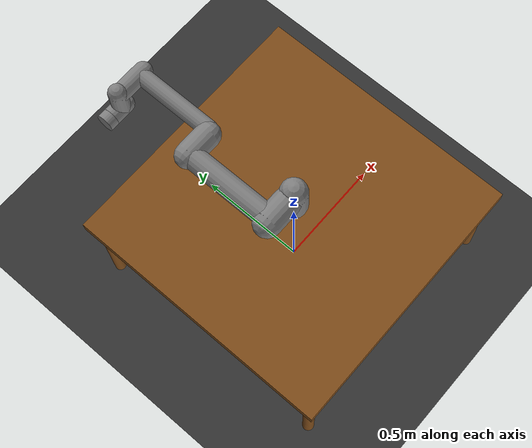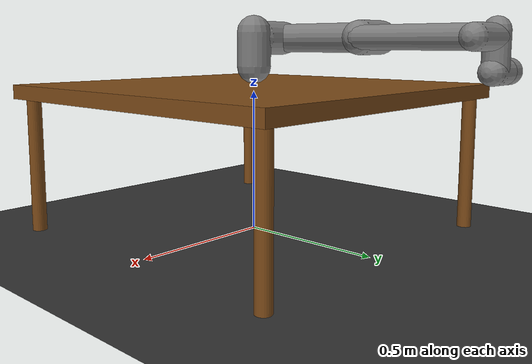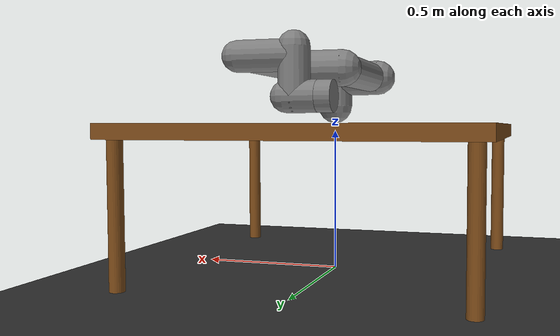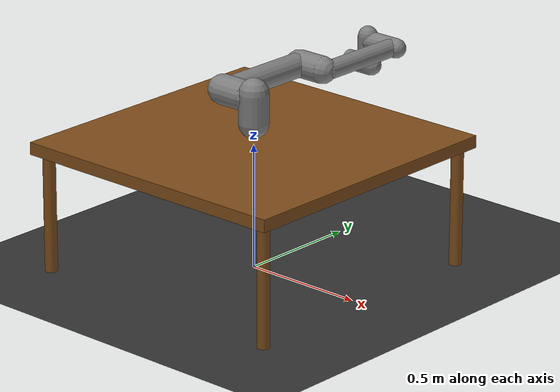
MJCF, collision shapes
<?xml version="1.0" ?>
<mujoco model="ur5e">
    <compiler angle="radian" meshdir="assets" autolimits="true"/>

    <option integrator="implicitfast"/>

    <visual>
        <global offwidth="1920" offheight="1080"/>
        <quality shadowsize="4096"/>
        <map force="0.1" zfar="30"/>
        <scale forcewidth="0.01" contactwidth="0.1" contactheight="0.03" connect="0.5"/>
    </visual>

    <default>
        <default class="ur5e">
            <material specular="0.5" shininess="0.25"/>
            <joint axis="0 1 0" range="-6.28319 6.28319" armature="0.1"/>
            <general gaintype="fixed" biastype="affine" ctrlrange="-6.2831 6.2831" gainprm="2000" biasprm="0 -2000 -400"
                forcerange="-150 150"/>
            <default class="size3">
                <default class="size3_limited">
                    <joint range="-3.1415 3.1415"/>
                    <general ctrlrange="-3.1415 3.1415"/>
                </default>
            </default>
            <default class="size1">
                <general gainprm="500" biasprm="0 -500 -100" forcerange="-28 28"/>
            </default>
            <default class="visual">
                <geom type="mesh" contype="0" conaffinity="0" group="2"/>
            </default>
            <default class="collision">
                <geom type="capsule" group="3"/>
                <default class="eef_collision">
                    <geom type="cylinder"/>
                </default>
            </default>
            <site size="0.001" rgba="0.5 0.5 0.5 0.3" group="4"/>
        </default>
    </default>

    <asset>
        <material class="ur5e" name="black" rgba="0.033 0.033 0.033 1"/>
        <material class="ur5e" name="jointgray" rgba="0.278 0.278 0.278 1"/>
        <material class="ur5e" name="linkgray" rgba="0.82 0.82 0.82 1"/>
        <material class="ur5e" name="urblue" rgba="0.49 0.678 0.8 1"/>
        <material name="table" rgba="0.5 0.3 0.1 1" specular="0.3" shininess="0.3"/>
        <material name="floor" rgba="0.2 0.2 0.2 1" specular="0.1" shininess="0.1"/>

        <!-- Original UR5e meshes -->
        <mesh file="base_0.obj"/>
        <mesh file="base_1.obj"/>
        <mesh file="shoulder_0.obj"/>
        <mesh file="shoulder_1.obj"/>
        <mesh file="shoulder_2.obj"/>
        <mesh file="upperarm_0.obj"/>
        <mesh file="upperarm_1.obj"/>
        <mesh file="upperarm_2.obj"/>
        <mesh file="upperarm_3.obj"/>
        <mesh file="forearm_0.obj"/>
        <mesh file="forearm_1.obj"/>
        <mesh file="forearm_2.obj"/>
        <mesh file="forearm_3.obj"/>
        <mesh file="wrist1_0.obj"/>
        <mesh file="wrist1_1.obj"/>
        <mesh file="wrist1_2.obj"/>
        <mesh file="wrist2_0.obj"/>
        <mesh file="wrist2_1.obj"/>
        <mesh file="wrist2_2.obj"/>
        <mesh file="wrist3.obj"/>
    </asset>

    <worldbody>
        <light name="spotlight" mode="targetbodycom" target="wrist_2_link" pos="0 -1 2"/>
        <light name="top" pos="0 0 3" dir="0 0 -1" directional="true"/>

        <!-- Floor -->
        <geom name="floor" type="plane" size="5 5 0.1" pos="0 0 0" material="floor"/>

        <!-- Multiple camera views -->
        <camera name="wide_fixed" pos="4.0 -3.0 3.0" target="base"/>  <!-- Target base body -->
        <camera name="side" pos="3.0 0.0 1.5" target="base"/>
        <camera name="top" pos="0.0 0.0 4.0" target="base"/>

        <!-- Table -->
        <body name="table" pos="0 0 0.5">
            <geom name="table_top" type="box" size="0.6 0.6 0.025" material="table"/>
            <geom name="leg1" type="cylinder" pos="0.55 0.55 -0.25" size="0.025 0.25" material="table"/>
            <geom name="leg2" type="cylinder" pos="-0.55 0.55 -0.25" size="0.025 0.25" material="table"/>
            <geom name="leg3" type="cylinder" pos="0.55 -0.55 -0.25" size="0.025 0.25" material="table"/>
            <geom name="leg4" type="cylinder" pos="-0.55 -0.55 -0.25" size="0.025 0.25" material="table"/>

            <!-- UR5e Base -->
            <body name="base" pos="0 0 0.025" quat="1 0 0 1" childclass="ur5e">
                <inertial mass="4.0" pos="0 0 0" diaginertia="0.00443333156 0.00443333156 0.0072"/>
                <geom mesh="base_0" material="black" class="visual"/>
                <geom mesh="base_1" material="jointgray" class="visual"/>

                <body name="shoulder_link" pos="0 0 0.163">
                    <inertial mass="3.7" pos="0 0 0" diaginertia="0.0102675 0.0102675 0.00666"/>
                    <joint name="shoulder_pan_joint" class="size3" axis="0 0 1"/>
                    <geom mesh="shoulder_0" material="urblue" class="visual"/>
                    <geom mesh="shoulder_1" material="black" class="visual"/>
                    <geom mesh="shoulder_2" material="jointgray" class="visual"/>
                    <geom class="collision" size="0.06 0.06" pos="0 0 -0.04"/>

                    <body name="upper_arm_link" pos="0 0.138 0" quat="1 0 1 0">
                        <inertial mass="8.393" pos="0 0 0.2125" diaginertia="0.133886 0.133886 0.0151074"/>
                        <joint name="shoulder_lift_joint" class="size3"/>
                        <geom mesh="upperarm_0" material="linkgray" class="visual"/>
                        <geom mesh="upperarm_1" material="black" class="visual"/>
                        <geom mesh="upperarm_2" material="jointgray" class="visual"/>
                        <geom mesh="upperarm_3" material="urblue" class="visual"/>
                        <geom class="collision" pos="0 -0.04 0" quat="1 1 0 0" size="0.06 0.06"/>
                        <geom class="collision" size="0.05 0.2" pos="0 0 0.2"/>

                        <body name="forearm_link" pos="0 -0.131 0.425">
                            <inertial mass="2.275" pos="0 0 0.196" diaginertia="0.0311796 0.0311796 0.004095"/>
                            <joint name="elbow_joint" class="size3_limited"/>
                            <geom mesh="forearm_0" material="urblue" class="visual"/>
                            <geom mesh="forearm_1" material="linkgray" class="visual"/>
                            <geom mesh="forearm_2" material="black" class="visual"/>
                            <geom mesh="forearm_3" material="jointgray" class="visual"/>
                            <geom class="collision" pos="0 0.08 0" quat="1 1 0 0" size="0.055 0.06"/>
                            <geom class="collision" size="0.038 0.19" pos="0 0 0.2"/>

                            <body name="wrist_1_link" pos="0 0 0.392" quat="1 0 1 0">
                                <inertial mass="1.219" pos="0 0.127 0" diaginertia="0.0025599 0.0025599 0.0021942"/>
                                <joint name="wrist_1_joint" class="size1"/>
                                <geom mesh="wrist1_0" material="black" class="visual"/>
                                <geom mesh="wrist1_1" material="urblue" class="visual"/>
                                <geom mesh="wrist1_2" material="jointgray" class="visual"/>
                                <geom class="collision" pos="0 0.05 0" quat="1 1 0 0" size="0.04 0.07"/>

                                <body name="wrist_2_link" pos="0 0.127 0">
                                    <inertial mass="1.219" pos="0 0 0.1" diaginertia="0.0025599 0.0025599 0.0021942"/>
                                    <joint name="wrist_2_joint" axis="0 0 1" class="size1"/>
                                    <geom mesh="wrist2_0" material="black" class="visual"/>
                                    <geom mesh="wrist2_1" material="urblue" class="visual"/>
                                    <geom mesh="wrist2_2" material="jointgray" class="visual"/>
                                    <geom class="collision" size="0.04 0.06" pos="0 0 0.04"/>
                                    <geom class="collision" pos="0 0.02 0.1" quat="1 1 0 0" size="0.04 0.04"/>

                                    <body name="wrist_3_link" pos="0 0 0.1">
                                        <inertial mass="0.1889" pos="0 0.0771683 0" quat="1 0 0 1"
                                            diaginertia="0.000132134 9.90863e-05 9.90863e-05"/>
                                        <joint name="wrist_3_joint" class="size1"/>
                                        <geom material="linkgray" mesh="wrist3" class="visual"/>
                                        <geom class="eef_collision" pos="0 0.08 0" quat="1 1 0 0" size="0.04 0.02"/>
                                        <site name="ee_site" pos="0 0.1 0" quat="-1 1 0 0"/>
                                    </body>
                                </body>
                            </body>
                        </body>
                    </body>
                </body>
            </body>
        </body>
    </worldbody>

    <actuator>
        <general class="size3" name="shoulder_pan" joint="shoulder_pan_joint"/>
        <general class="size3" name="shoulder_lift" joint="shoulder_lift_joint"/>
        <general class="size3_limited" name="elbow" joint="elbow_joint"/>
        <general class="size1" name="wrist_1" joint="wrist_1_joint"/>
        <general class="size1" name="wrist_2" joint="wrist_2_joint"/>
        <general class="size1" name="wrist_3" joint="wrist_3_joint"/>
    </actuator>

    <keyframe>
        <key name="home" qpos="-1.5708 -1.5708 1.5708 -1.5708 -1.5708 0"
             ctrl="-1.5708 -1.5708 1.5708 -1.5708 -1.5708 0"/>
    </keyframe>
</mujoco>
